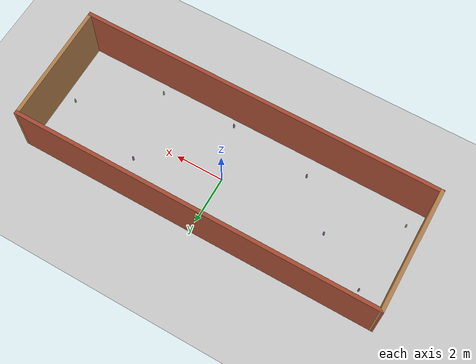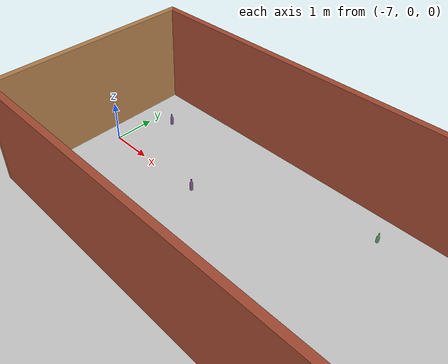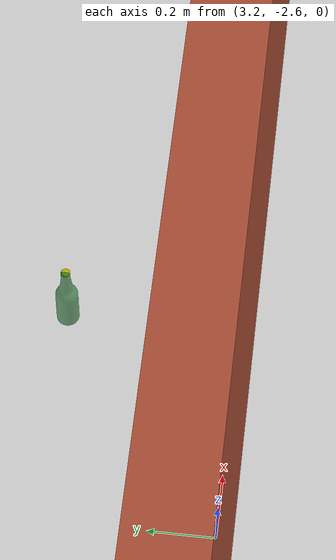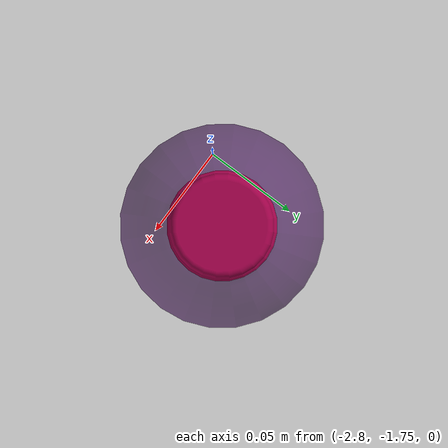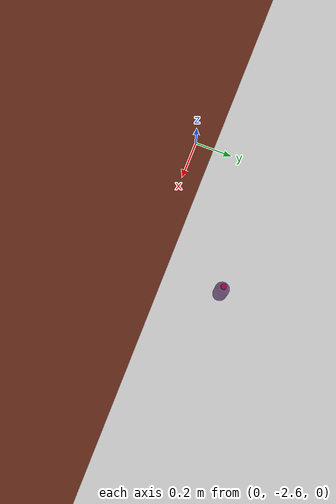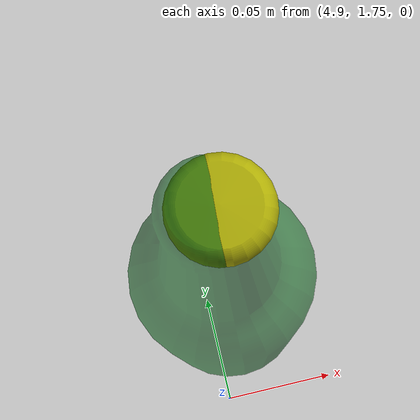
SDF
<sdf version="1.6">
 <world name="default">
  <model name="ground_plane">
   <static>1</static>
   <link name="link">
    <collision name="collision">
     <geometry><plane><normal>0 0 1</normal><size>100 100</size></plane></geometry>
     <surface>
      <contact><collide_bitmask>65535</collide_bitmask></contact>
      <friction><ode><mu>100</mu><mu2>50</mu2></ode></friction>
     </surface>
    </collision>
    <visual name="visual">
     <cast_shadows>0</cast_shadows>
     <geometry><plane><normal>0 0 1</normal><size>100 100</size></plane></geometry>
     <material>
      <script><uri>file://media/materials/scripts/gazebo.material</uri><name>Gazebo/Grey</name></script>
     </material>
    </visual>
   </link>
  </model>
  <gravity>0 0 -9.8</gravity>
  <magnetic_field>6e-06 2.3e-05 -4.2e-05</magnetic_field>
  <atmosphere type="adiabatic"/>
  <physics name="default_physics" default="0" type="ode">
   <max_step_size>0.001</max_step_size>
   <real_time_factor>1</real_time_factor>
   <real_time_update_rate>1000</real_time_update_rate>
  </physics>
  <scene><ambient>0.4 0.4 0.4 1</ambient><background>0.7 0.7 0.7 1</background><shadows>1</shadows></scene>
  <spherical_coordinates>
   <surface_model>EARTH_WGS84</surface_model>
   <latitude_deg>0</latitude_deg>
   <longitude_deg>0</longitude_deg>
   <elevation>0</elevation>
   <heading_deg>0</heading_deg>
  </spherical_coordinates>
  <model name="train_world">
   <pose>-0.098432 -0.108201 0 0 -0 0</pose>
   <link name="Wall_0">
    <collision name="Wall_0_Collision">
     <geometry><box><size>15 0.15 2.5</size></box></geometry>
     <pose>0 0 1.25 0 -0 0</pose>
    </collision>
    <visual name="Wall_0_Visual">
     <pose>0 0 1.25 0 -0 0</pose>
     <geometry><box><size>15 0.15 2.5</size></box></geometry>
     <material>
      <script><uri>file://media/materials/scripts/gazebo.material</uri><name>Gazebo/Bricks</name></script>
      <ambient>1 1 1 1</ambient>
     </material>
     <meta><layer>0</layer></meta>
    </visual>
    <pose>-0.020001 2.4655 0 0 -0 0</pose>
   </link>
   <link name="Wall_1">
    <collision name="Wall_1_Collision">
     <geometry><box><size>5.08152 0.15 2.5</size></box></geometry>
     <pose>0 0 1.25 0 -0 0</pose>
    </collision>
    <visual name="Wall_1_Visual">
     <pose>0 0 1.25 0 -0 0</pose>
     <geometry><box><size>5.08152 0.15 2.5</size></box></geometry>
     <material>
      <script><uri>file://media/materials/scripts/gazebo.material</uri><name>Gazebo/Wood</name></script>
      <ambient>1 1 1 1</ambient>
     </material>
     <meta><layer>0</layer></meta>
    </visual>
    <pose>7.425 0 0 0 0 -1.56269</pose>
   </link>
   <link name="Wall_4">
    <collision name="Wall_4_Collision">
     <geometry><box><size>15 0.15 2.5</size></box></geometry>
     <pose>0 0 1.25 0 -0 0</pose>
    </collision>
    <visual name="Wall_4_Visual">
     <pose>0 0 1.25 0 -0 0</pose>
     <geometry><box><size>15 0.15 2.5</size></box></geometry>
     <material>
      <script><uri>file://media/materials/scripts/gazebo.material</uri><name>Gazebo/Bricks</name></script>
      <ambient>1 1 1 1</ambient>
     </material>
     <meta><layer>0</layer></meta>
    </visual>
    <pose>0.019999 -2.4655 0 0 -0 3.14159</pose>
   </link>
   <link name="Wall_5">
    <collision name="Wall_5_Collision">
     <geometry><box><size>5.08108 0.15 2.5</size></box></geometry>
     <pose>0 0 1.25 0 -0 0</pose>
    </collision>
    <visual name="Wall_5_Visual">
     <pose>0 0 1.25 0 -0 0</pose>
     <geometry><box><size>5.08108 0.15 2.5</size></box></geometry>
     <material>
      <script><uri>file://media/materials/scripts/gazebo.material</uri><name>Gazebo/Wood</name></script>
      <ambient>1 1 1 1</ambient>
     </material>
     <meta><layer>0</layer></meta>
    </visual>
    <pose>-7.425 0 0 0 -0 1.57891</pose>
   </link>
   <static>1</static>
  </model>
  <light name="user_point_light_3" type="point">
   <pose>4.83303 1.46442 1 0 -0 0</pose>
   <diffuse>0.5 0.5 0.5 1</diffuse>
   <specular>0.1 0.1 0.1 1</specular>
   <attenuation>
    <range>20</range>
    <constant>0.5</constant>
    <linear>0.01</linear>
    <quadratic>0.001</quadratic>
   </attenuation>
   <cast_shadows>0</cast_shadows>
   <direction>0 0 -1</direction>
  </light>
  <light name="user_point_light_8" type="point">
   <pose>-5.43827 0.031972 1 0 -0 0</pose>
   <diffuse>0.5 0.5 0.5 1</diffuse>
   <specular>0.1 0.1 0.1 1</specular>
   <attenuation>
    <range>20</range>
    <constant>0.5</constant>
    <linear>0.01</linear>
    <quadratic>0.001</quadratic>
   </attenuation>
   <cast_shadows>0</cast_shadows>
   <direction>0 0 -1</direction>
  </light>
  <model name="bottle_beer">
   <link name="link_2">
    <pose>0.000404 7.5e-05 0 0 -0 0</pose>
    <visual name="visual">
     <geometry><mesh><uri>model://bottle_beer/meshes/beer_bottle.dae</uri><scale>1 1 1</scale></mesh></geometry>
     <material>
      <lighting>1</lighting>
      <ambient>0.035 0.415 0.098 1</ambient>
      <diffuse>0.035 0.415 0.098 1</diffuse>
      <specular>0.01 0.01 0.01 1</specular>
      <emissive>0 0 0 1</emissive>
      <shader type="vertex"><normal_map>__default__</normal_map></shader>
     </material>
     <transparency>0.4</transparency>
    </visual>
    <collision name="collision">
     <geometry><mesh><uri>model://bottle_beer/meshes/beer_bottle.dae</uri><scale>1 1 1</scale></mesh></geometry>
    </collision>
   </link>
   <link name="link_3">
    <pose>-0.000404 -7.5e-05 0 0 -0 0</pose>
    <visual name="visual">
     <geometry><mesh><uri>model://bottle_beer/meshes/cap.dae</uri><scale>1 1 1</scale></mesh></geometry>
     <material>
      <lighting>1</lighting>
      <ambient>0.694 0.686 0.023 1</ambient>
      <diffuse>0.694 0.686 0.023 1</diffuse>
      <specular>0.01 0.01 0.01 1</specular>
      <emissive>0 0 0 1</emissive>
      <shader type="vertex"><normal_map>__default__</normal_map></shader>
     </material>
    </visual>
    <collision name="collision">
     <geometry><mesh><uri>model://bottle_beer/meshes/cap.dae</uri><scale>1 1 1</scale></mesh></geometry>
    </collision>
   </link>
   <static>1</static>
   <pose>4.90936 1.79364 0 0 -0 0</pose>
  </model>
  <model name="bottle_beer_0">
   <link name="link_2">
    <pose>0.000404 7.5e-05 0 0 -0 0</pose>
    <visual name="visual">
     <geometry><mesh><uri>model://bottle_beer/meshes/beer_bottle.dae</uri><scale>1 1 1</scale></mesh></geometry>
     <material>
      <lighting>1</lighting>
      <ambient>0.035 0.415 0.098 1</ambient>
      <diffuse>0.035 0.415 0.098 1</diffuse>
      <specular>0.01 0.01 0.01 1</specular>
      <emissive>0 0 0 1</emissive>
      <shader type="vertex"><normal_map>__default__</normal_map></shader>
     </material>
     <transparency>0.4</transparency>
    </visual>
    <collision name="collision">
     <geometry><mesh><uri>model://bottle_beer/meshes/beer_bottle.dae</uri><scale>1 1 1</scale></mesh></geometry>
    </collision>
   </link>
   <link name="link_3">
    <pose>-0.000404 -7.5e-05 0 0 -0 0</pose>
    <visual name="visual">
     <geometry><mesh><uri>model://bottle_beer/meshes/cap.dae</uri><scale>1 1 1</scale></mesh></geometry>
     <material>
      <lighting>1</lighting>
      <ambient>0.694 0.686 0.023 1</ambient>
      <diffuse>0.694 0.686 0.023 1</diffuse>
      <specular>0.01 0.01 0.01 1</specular>
      <emissive>0 0 0 1</emissive>
      <shader type="vertex"><normal_map>__default__</normal_map></shader>
     </material>
    </visual>
    <collision name="collision">
     <geometry><mesh><uri>model://bottle_beer/meshes/cap.dae</uri><scale>1 1 1</scale></mesh></geometry>
    </collision>
   </link>
   <static>1</static>
   <pose>6.76195 -0.025264 0 0 -0 0</pose>
  </model>
  <model name="bottle_beer_1">
   <link name="link_2">
    <pose>0.000404 7.5e-05 0 0 -0 0</pose>
    <visual name="visual">
     <geometry><mesh><uri>model://bottle_beer/meshes/beer_bottle.dae</uri><scale>1 1 1</scale></mesh></geometry>
     <material>
      <lighting>1</lighting>
      <ambient>0.035 0.415 0.098 1</ambient>
      <diffuse>0.035 0.415 0.098 1</diffuse>
      <specular>0.01 0.01 0.01 1</specular>
      <emissive>0 0 0 1</emissive>
      <shader type="vertex"><normal_map>__default__</normal_map></shader>
     </material>
     <transparency>0.4</transparency>
    </visual>
    <collision name="collision">
     <geometry><mesh><uri>model://bottle_beer/meshes/beer_bottle.dae</uri><scale>1 1 1</scale></mesh></geometry>
    </collision>
   </link>
   <link name="link_3">
    <pose>-0.000404 -7.5e-05 0 0 -0 0</pose>
    <visual name="visual">
     <geometry><mesh><uri>model://bottle_beer/meshes/cap.dae</uri><scale>1 1 1</scale></mesh></geometry>
     <material>
      <lighting>1</lighting>
      <ambient>0.694 0.686 0.023 1</ambient>
      <diffuse>0.694 0.686 0.023 1</diffuse>
      <specular>0.01 0.01 0.01 1</specular>
      <emissive>0 0 0 1</emissive>
      <shader type="vertex"><normal_map>__default__</normal_map></shader>
     </material>
    </visual>
    <collision name="collision">
     <geometry><mesh><uri>model://bottle_beer/meshes/cap.dae</uri><scale>1 1 1</scale></mesh></geometry>
    </collision>
   </link>
   <static>1</static>
   <pose>3.88201 -2.07994 0 0 -0 0</pose>
  </model>
  <model name="bottle_beer_2">
   <link name="link_2">
    <pose>0.000404 7.5e-05 0 0 -0 0</pose>
    <visual name="visual">
     <geometry><mesh><uri>model://bottle_beer/meshes/beer_bottle.dae</uri><scale>1 1 1</scale></mesh></geometry>
     <material>
      <lighting>1</lighting>
      <ambient>0.035 0.415 0.098 1</ambient>
      <diffuse>0.035 0.415 0.098 1</diffuse>
      <specular>0.01 0.01 0.01 1</specular>
      <emissive>0 0 0 1</emissive>
      <shader type="vertex"><normal_map>__default__</normal_map></shader>
     </material>
     <transparency>0.4</transparency>
    </visual>
    <collision name="collision">
     <geometry><mesh><uri>model://bottle_beer/meshes/beer_bottle.dae</uri><scale>1 1 1</scale></mesh></geometry>
    </collision>
   </link>
   <link name="link_3">
    <pose>-0.000404 -7.5e-05 0 0 -0 0</pose>
    <visual name="visual">
     <geometry><mesh><uri>model://bottle_beer/meshes/cap.dae</uri><scale>1 1 1</scale></mesh></geometry>
     <material>
      <lighting>1</lighting>
      <ambient>0.694 0.686 0.023 1</ambient>
      <diffuse>0.694 0.686 0.023 1</diffuse>
      <specular>0.01 0.01 0.01 1</specular>
      <emissive>0 0 0 1</emissive>
      <shader type="vertex"><normal_map>__default__</normal_map></shader>
     </material>
    </visual>
    <collision name="collision">
     <geometry><mesh><uri>model://bottle_beer/meshes/cap.dae</uri><scale>1 1 1</scale></mesh></geometry>
    </collision>
   </link>
   <static>1</static>
   <pose>-0.783137 1.64207 0 0 -0 0</pose>
  </model>
  <model name="bottle_beer_3">
   <link name="link_2">
    <pose>0.000404 7.5e-05 0 0 -0 0</pose>
    <visual name="visual">
     <geometry><mesh><uri>model://bottle_beer/meshes/beer_bottle.dae</uri><scale>1 1 1</scale></mesh></geometry>
     <material>
      <lighting>1</lighting>
      <ambient>0.035 0.415 0.098 1</ambient>
      <diffuse>0.035 0.415 0.098 1</diffuse>
      <specular>0.01 0.01 0.01 1</specular>
      <emissive>0 0 0 1</emissive>
      <shader type="vertex"><normal_map>__default__</normal_map></shader>
     </material>
     <transparency>0.4</transparency>
    </visual>
    <collision name="collision">
     <geometry><mesh><uri>model://bottle_beer/meshes/beer_bottle.dae</uri><scale>1 1 1</scale></mesh></geometry>
    </collision>
   </link>
   <link name="link_3">
    <pose>-0.000404 -7.5e-05 0 0 -0 0</pose>
    <visual name="visual">
     <geometry><mesh><uri>model://bottle_beer/meshes/cap.dae</uri><scale>1 1 1</scale></mesh></geometry>
     <material>
      <lighting>1</lighting>
      <ambient>0.694 0.686 0.023 1</ambient>
      <diffuse>0.694 0.686 0.023 1</diffuse>
      <specular>0.01 0.01 0.01 1</specular>
      <emissive>0 0 0 1</emissive>
      <shader type="vertex"><normal_map>__default__</normal_map></shader>
     </material>
    </visual>
    <collision name="collision">
     <geometry><mesh><uri>model://bottle_beer/meshes/cap.dae</uri><scale>1 1 1</scale></mesh></geometry>
    </collision>
   </link>
   <static>1</static>
   <pose>-6.94721 -1.79364 0 0 -0 0</pose>
  </model>
  <model name="bottle_red_wine">
   <link name="link_22">
    <pose>-0.038814 -0.033806 0.002754 0 -0 0</pose>
    <visual name="visual">
     <geometry><mesh><uri>model://bottle_red_wine/meshes/bottle.dae</uri><scale>1 1 1</scale></mesh></geometry>
     <material>
      <lighting>1</lighting>
      <ambient>0.215 0 0.305 1</ambient>
      <diffuse>0.215 0 0.305 1</diffuse>
      <specular>0.01 0.01 0.01 1</specular>
      <emissive>0 0 0 1</emissive>
      <shader type="vertex"><normal_map>__default__</normal_map></shader>
     </material>
     <transparency>0.4</transparency>
    </visual>
    <collision name="collision">
     <geometry><mesh><uri>model://bottle_red_wine/meshes/bottle.dae</uri><scale>1 1 1</scale></mesh></geometry>
    </collision>
   </link>
   <link name="link_23">
    <pose>-0.038814 -0.033806 0.002754 0 -0 0</pose>
    <inertial>
     <mass>1</mass>
     <inertia>
      <ixx>0.166667</ixx>
      <ixy>0</ixy>
      <ixz>0</ixz>
      <iyy>0.166667</iyy>
      <iyz>0</iyz>
      <izz>0.166667</izz>
     </inertia>
    </inertial>
    <visual name="visual">
     <geometry><mesh><uri>model://bottle_red_wine/meshes/cap.dae</uri><scale>1 1 1</scale></mesh></geometry>
     <material>
      <lighting>1</lighting>
      <ambient>0.623 0 0.282 1</ambient>
      <diffuse>0.623 0 0.282 1</diffuse>
      <specular>0.01 0.01 0.01 1</specular>
      <emissive>0 0 0 1</emissive>
      <shader type="vertex"><normal_map>__default__</normal_map></shader>
     </material>
    </visual>
    <collision name="collision">
     <geometry><mesh><uri>model://bottle_red_wine/meshes/cap.dae</uri><scale>1 1 1</scale></mesh></geometry>
    </collision>
   </link>
   <static>1</static>
   <pose>-6.50932 1.32207 0 0 -0 0</pose>
  </model>
  <model name="bottle_red_wine_0">
   <link name="link_22">
    <pose>-0.038814 -0.033806 0.002754 0 -0 0</pose>
    <visual name="visual">
     <geometry><mesh><uri>model://bottle_red_wine/meshes/bottle.dae</uri><scale>1 1 1</scale></mesh></geometry>
     <material>
      <lighting>1</lighting>
      <ambient>0.215 0 0.305 1</ambient>
      <diffuse>0.215 0 0.305 1</diffuse>
      <specular>0.01 0.01 0.01 1</specular>
      <emissive>0 0 0 1</emissive>
      <shader type="vertex"><normal_map>__default__</normal_map></shader>
     </material>
     <transparency>0.4</transparency>
    </visual>
    <collision name="collision">
     <geometry><mesh><uri>model://bottle_red_wine/meshes/bottle.dae</uri><scale>1 1 1</scale></mesh></geometry>
    </collision>
   </link>
   <link name="link_23">
    <pose>-0.038814 -0.033806 0.002754 0 -0 0</pose>
    <inertial>
     <mass>1</mass>
     <inertia>
      <ixx>0.166667</ixx>
      <ixy>0</ixy>
      <ixz>0</ixz>
      <iyy>0.166667</iyy>
      <iyz>0</iyz>
      <izz>0.166667</izz>
     </inertia>
    </inertial>
    <visual name="visual">
     <geometry><mesh><uri>model://bottle_red_wine/meshes/cap.dae</uri><scale>1 1 1</scale></mesh></geometry>
     <material>
      <lighting>1</lighting>
      <ambient>0.623 0 0.282 1</ambient>
      <diffuse>0.623 0 0.282 1</diffuse>
      <specular>0.01 0.01 0.01 1</specular>
      <emissive>0 0 0 1</emissive>
      <shader type="vertex"><normal_map>__default__</normal_map></shader>
     </material>
    </visual>
    <collision name="collision">
     <geometry><mesh><uri>model://bottle_red_wine/meshes/cap.dae</uri><scale>1 1 1</scale></mesh></geometry>
    </collision>
   </link>
   <static>1</static>
   <pose>-2.77046 -1.72628 0 0 -0 0</pose>
  </model>
  <model name="bottle_red_wine_1">
   <link name="link_22">
    <pose>-0.038814 -0.033806 0.002754 0 -0 0</pose>
    <visual name="visual">
     <geometry><mesh><uri>model://bottle_red_wine/meshes/bottle.dae</uri><scale>1 1 1</scale></mesh></geometry>
     <material>
      <lighting>1</lighting>
      <ambient>0.215 0 0.305 1</ambient>
      <diffuse>0.215 0 0.305 1</diffuse>
      <specular>0.01 0.01 0.01 1</specular>
      <emissive>0 0 0 1</emissive>
      <shader type="vertex"><normal_map>__default__</normal_map></shader>
     </material>
     <transparency>0.4</transparency>
    </visual>
    <collision name="collision">
     <geometry><mesh><uri>model://bottle_red_wine/meshes/bottle.dae</uri><scale>1 1 1</scale></mesh></geometry>
    </collision>
   </link>
   <link name="link_23">
    <pose>-0.038814 -0.033806 0.002754 0 -0 0</pose>
    <inertial>
     <mass>1</mass>
     <inertia>
      <ixx>0.166667</ixx>
      <ixy>0</ixy>
      <ixz>0</ixz>
      <iyy>0.166667</iyy>
      <iyz>0</iyz>
      <izz>0.166667</izz>
     </inertia>
    </inertial>
    <visual name="visual">
     <geometry><mesh><uri>model://bottle_red_wine/meshes/cap.dae</uri><scale>1 1 1</scale></mesh></geometry>
     <material>
      <lighting>1</lighting>
      <ambient>0.623 0 0.282 1</ambient>
      <diffuse>0.623 0 0.282 1</diffuse>
      <specular>0.01 0.01 0.01 1</specular>
      <emissive>0 0 0 1</emissive>
      <shader type="vertex"><normal_map>__default__</normal_map></shader>
     </material>
    </visual>
    <collision name="collision">
     <geometry><mesh><uri>model://bottle_red_wine/meshes/cap.dae</uri><scale>1 1 1</scale></mesh></geometry>
    </collision>
   </link>
   <static>1</static>
   <pose>0.715771 -2.19958 0 0 -0 0</pose>
  </model>
  <model name="bottle_red_wine_2">
   <link name="link_22">
    <pose>-0.038814 -0.033806 0.002754 0 -0 0</pose>
    <visual name="visual">
     <geometry><mesh><uri>model://bottle_red_wine/meshes/bottle.dae</uri><scale>1 1 1</scale></mesh></geometry>
     <material>
      <lighting>1</lighting>
      <ambient>0.215 0 0.305 1</ambient>
      <diffuse>0.215 0 0.305 1</diffuse>
      <specular>0.01 0.01 0.01 1</specular>
      <emissive>0 0 0 1</emissive>
      <shader type="vertex"><normal_map>__default__</normal_map></shader>
     </material>
     <transparency>0.4</transparency>
    </visual>
    <collision name="collision">
     <geometry><mesh><uri>model://bottle_red_wine/meshes/bottle.dae</uri><scale>1 1 1</scale></mesh></geometry>
    </collision>
   </link>
   <link name="link_23">
    <pose>-0.038814 -0.033806 0.002754 0 -0 0</pose>
    <inertial>
     <mass>1</mass>
     <inertia>
      <ixx>0.166667</ixx>
      <ixy>0</ixy>
      <ixz>0</ixz>
      <iyy>0.166667</iyy>
      <iyz>0</iyz>
      <izz>0.166667</izz>
     </inertia>
    </inertial>
    <visual name="visual">
     <geometry><mesh><uri>model://bottle_red_wine/meshes/cap.dae</uri><scale>1 1 1</scale></mesh></geometry>
     <material>
      <lighting>1</lighting>
      <ambient>0.623 0 0.282 1</ambient>
      <diffuse>0.623 0 0.282 1</diffuse>
      <specular>0.01 0.01 0.01 1</specular>
      <emissive>0 0 0 1</emissive>
      <shader type="vertex"><normal_map>__default__</normal_map></shader>
     </material>
    </visual>
    <collision name="collision">
     <geometry><mesh><uri>model://bottle_red_wine/meshes/cap.dae</uri><scale>1 1 1</scale></mesh></geometry>
    </collision>
   </link>
   <static>1</static>
   <pose>3.38982 0.968682 0 0 -0 0</pose>
  </model>
  <model name="bottle_red_wine_3">
   <link name="link_22">
    <pose>-0.038814 -0.033806 0.002754 0 -0 0</pose>
    <visual name="visual">
     <geometry><mesh><uri>model://bottle_red_wine/meshes/bottle.dae</uri><scale>1 1 1</scale></mesh></geometry>
     <material>
      <lighting>1</lighting>
      <ambient>0.215 0 0.305 1</ambient>
      <diffuse>0.215 0 0.305 1</diffuse>
      <specular>0.01 0.01 0.01 1</specular>
      <emissive>0 0 0 1</emissive>
      <shader type="vertex"><normal_map>__default__</normal_map></shader>
     </material>
     <transparency>0.4</transparency>
    </visual>
    <collision name="collision">
     <geometry><mesh><uri>model://bottle_red_wine/meshes/bottle.dae</uri><scale>1 1 1</scale></mesh></geometry>
    </collision>
   </link>
   <link name="link_23">
    <pose>-0.038814 -0.033806 0.002754 0 -0 0</pose>
    <inertial>
     <mass>1</mass>
     <inertia>
      <ixx>0.166667</ixx>
      <ixy>0</ixy>
      <ixz>0</ixz>
      <iyy>0.166667</iyy>
      <iyz>0</iyz>
      <izz>0.166667</izz>
     </inertia>
    </inertial>
    <visual name="visual">
     <geometry><mesh><uri>model://bottle_red_wine/meshes/cap.dae</uri><scale>1 1 1</scale></mesh></geometry>
     <material>
      <lighting>1</lighting>
      <ambient>0.623 0 0.282 1</ambient>
      <diffuse>0.623 0 0.282 1</diffuse>
      <specular>0.01 0.01 0.01 1</specular>
      <emissive>0 0 0 1</emissive>
      <shader type="vertex"><normal_map>__default__</normal_map></shader>
     </material>
    </visual>
    <collision name="collision">
     <geometry><mesh><uri>model://bottle_red_wine/meshes/cap.dae</uri><scale>1 1 1</scale></mesh></geometry>
    </collision>
   </link>
   <static>1</static>
   <pose>-4.41304 0.022652 0 0 -0 0</pose>
  </model>
  <light name="user_point_light_0" type="point">
   <pose>-0.072605 -0.020828 1 0 -0 0</pose>
   <diffuse>0.5 0.5 0.5 1</diffuse>
   <specular>0.1 0.1 0.1 1</specular>
   <attenuation>
    <range>20</range>
    <constant>0.5</constant>
    <linear>0.01</linear>
    <quadratic>0.001</quadratic>
   </attenuation>
   <cast_shadows>0</cast_shadows>
   <direction>0 0 -1</direction>
  </light>
 </world>
</sdf>
